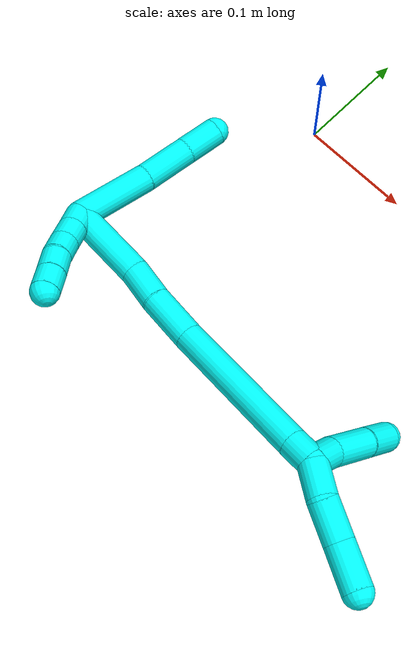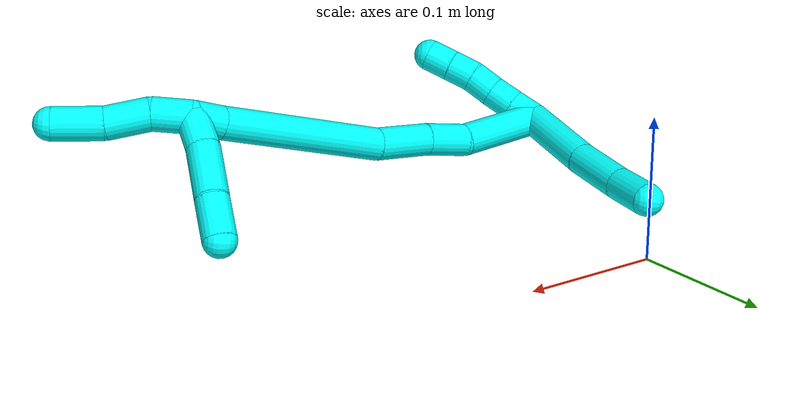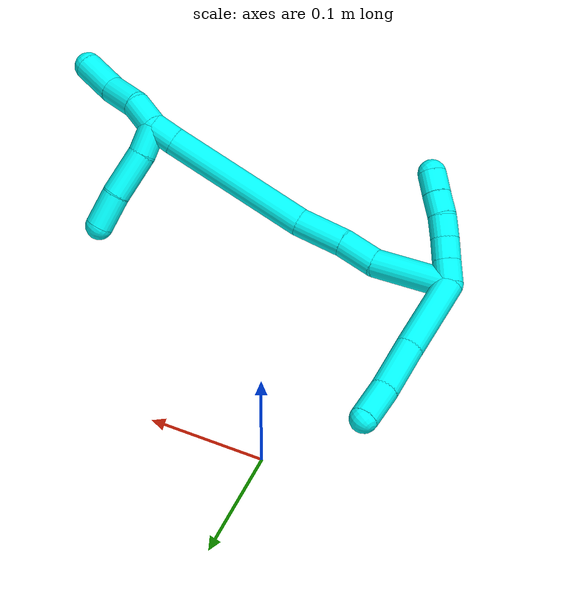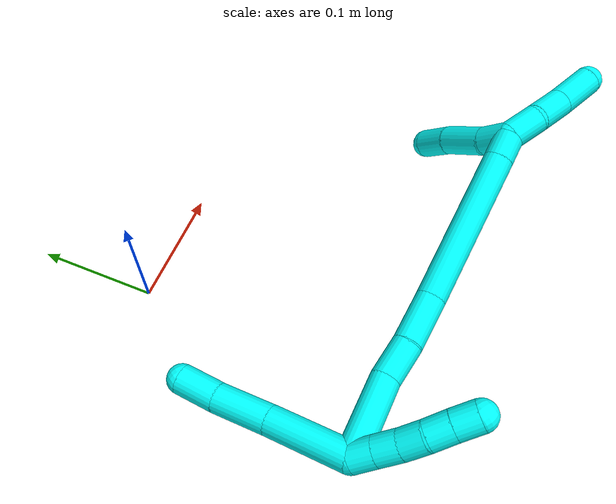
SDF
<sdf version="1.7">
 <world name="default">
  <model name="photoneo_s_sensor">
   <static>1</static>
   <pose>0 0 2 1.57079 1.57079 3.14159</pose>
   <link name="link">
    <inertial><mass>0.1</mass></inertial>
    <sensor name="sensor" type="depth">
     <update_rate>30</update_rate>
     <camera>
      <horizontal_fov>1.22</horizontal_fov>
      <image><width>1920</width><height>1200</height><format>B8G8R8</format></image>
      <clip><near>0.1</near><far>4</far></clip>
      <depth_camera><output>points</output></depth_camera>
     </camera>
     <plugin name="camera_plugin" filename="libgazebo_ros_depth_camera.so">
      <baseline>0.2</baseline>
      <alwaysOn>1</alwaysOn>
      <updateRate>0.0</updateRate>
      <cameraName>camera_ir</cameraName>
      <imageTopicName>/camera/color/image_raw</imageTopicName>
      <cameraInfoTopicName>/camera/color/camera_info</cameraInfoTopicName>
      <depthImageTopicName>/camera/depth/image_raw</depthImageTopicName>
      <depthImageCameraInfoTopicName>/camera/depth/camera_info</depthImageCameraInfoTopicName>
      <pointCloudTopicName>/camera/depth/points</pointCloudTopicName>
      <frameName>fr_optical</frameName>
      <pointCloudCutoff>0.1</pointCloudCutoff>
      <pointCloudCutoffMax>2.0</pointCloudCutoffMax>
      <distortionK1>0</distortionK1>
      <distortionK2>0</distortionK2>
      <distortionK3>0</distortionK3>
      <distortionT1>0</distortionT1>
      <distortionT2>0</distortionT2>
      <CxPrime>0</CxPrime>
      <Cx>0</Cx>
      <Cy>0</Cy>
      <focalLength>0</focalLength>
      <hackBaseline>0</hackBaseline>
     </plugin>
    </sensor>
   </link>
  </model>
  <model name="bin">
   <static>1</static>
   <link name="bottom">
    <collision name="collision-bottom">
     <pose>0 0 -0.01 0 -0 0</pose>
     <geometry><box><size>0.8 0.6 0.02</size></box></geometry>
     <surface>
      <friction><ode><mu>100</mu><mu2>100</mu2></ode></friction>
      <contact><collide_bitmask>65535</collide_bitmask></contact>
     </surface>
    </collision>
   </link>
   <link name="west_wall">
    <collision name="collision-west_wall">
     <pose>-0.41 0 0.1 0 -0 0</pose>
     <geometry><box><size>0.02 0.6 0.2</size></box></geometry>
     <surface>
      <friction><ode><mu>100</mu><mu2>100</mu2></ode></friction>
      <contact><collide_bitmask>65535</collide_bitmask></contact>
     </surface>
    </collision>
   </link>
   <link name="east_wall">
    <collision name="collision-east_wall">
     <pose>0.41 0 0.1 0 -0 0</pose>
     <geometry><box><size>0.02 0.6 0.2</size></box></geometry>
     <surface>
      <friction><ode><mu>100</mu><mu2>100</mu2></ode></friction>
      <contact><collide_bitmask>65535</collide_bitmask></contact>
     </surface>
    </collision>
   </link>
   <link name="south_wall">
    <collision name="collision-south_wall">
     <pose>0 -0.31 0.1 0 -0 0</pose>
     <geometry><box><size>0.8 0.02 0.2</size></box></geometry>
     <surface>
      <friction><ode><mu>100</mu><mu2>100</mu2></ode></friction>
      <contact><collide_bitmask>65535</collide_bitmask></contact>
     </surface>
    </collision>
   </link>
   <link name="north_wall">
    <collision name="collision-north_wall">
     <pose>0 0.31 0.1 0 -0 0</pose>
     <geometry><box><size>0.8 0.02 0.2</size></box></geometry>
     <surface>
      <friction><ode><mu>100</mu><mu2>100</mu2></ode></friction>
      <contact><collide_bitmask>65535</collide_bitmask></contact>
     </surface>
    </collision>
   </link>
  </model>
  <model name="3">
   <static>0</static>
   <link name="3">
    <collision name="collision-cylinder-e_1_2_8">
     <pose>-0.017615 0.025891 -0.015328 -2.10533 -0.529635 0.888033</pose>
     <geometry><cylinder><radius>0.0125</radius><length>0.069731</length></cylinder></geometry>
     <surface>
      <friction><ode><mu>1.16</mu><mu2>1.16</mu2><slip1>0</slip1><slip2>0</slip2></ode></friction>
      <contact><ode><kp>1e+06</kp><kd>1</kd><max_vel>0</max_vel><min_depth>0.001</min_depth></ode></contact>
     </surface>
    </collision>
    <visual name="visual-cylinder-e_1_2_8">
     <pose>-0.017615 0.025891 -0.015328 -2.10533 -0.529635 0.888033</pose>
     <geometry><cylinder><radius>0.0125</radius><length>0.069731</length></cylinder></geometry>
     <material><ambient>0.003922 1 0.996078 1</ambient></material>
    </visual>
    <collision name="collision-cylinder-e_2_8_9">
     <pose>-0.047927 0.067937 -0.041721 -2.17132 -0.575314 1.02287</pose>
     <geometry><cylinder><radius>0.0125</radius><length>0.046674</length></cylinder></geometry>
     <surface>
      <friction><ode><mu>1.16</mu><mu2>1.16</mu2><slip1>0</slip1><slip2>0</slip2></ode></friction>
      <contact><ode><kp>1e+06</kp><kd>1</kd><max_vel>0</max_vel><min_depth>0.001</min_depth></ode></contact>
     </surface>
    </collision>
    <visual name="visual-cylinder-e_2_8_9">
     <pose>-0.047927 0.067937 -0.041721 -2.17132 -0.575314 1.02287</pose>
     <geometry><cylinder><radius>0.0125</radius><length>0.046674</length></cylinder></geometry>
     <material><ambient>0.003922 1 0.996078 1</ambient></material>
    </visual>
    <collision name="collision-cylinder-e_3_9_6">
     <pose>-0.071037 0.095115 -0.060011 -2.15104 -0.668593 1.14287</pose>
     <geometry><cylinder><radius>0.0125</radius><length>0.033596</length></cylinder></geometry>
     <surface>
      <friction><ode><mu>1.16</mu><mu2>1.16</mu2><slip1>0</slip1><slip2>0</slip2></ode></friction>
      <contact><ode><kp>1e+06</kp><kd>1</kd><max_vel>0</max_vel><min_depth>0.001</min_depth></ode></contact>
     </surface>
    </collision>
    <visual name="visual-cylinder-e_3_9_6">
     <pose>-0.071037 0.095115 -0.060011 -2.15104 -0.668593 1.14287</pose>
     <geometry><cylinder><radius>0.0125</radius><length>0.033596</length></cylinder></geometry>
     <material><ambient>0.003922 1 0.996078 1</ambient></material>
    </visual>
    <collision name="collision-cylinder-e_1_2_10">
     <pose>0.000477 -0.005607 0.008266 0.596032 0.047707 0.014656</pose>
     <geometry><cylinder><radius>0.0125</radius><length>0.02</length></cylinder></geometry>
     <surface>
      <friction><ode><mu>1.16</mu><mu2>1.16</mu2><slip1>0</slip1><slip2>0</slip2></ode></friction>
      <contact><ode><kp>1e+06</kp><kd>1</kd><max_vel>0</max_vel><min_depth>0.001</min_depth></ode></contact>
     </surface>
    </collision>
    <visual name="visual-cylinder-e_1_2_10">
     <pose>0.000477 -0.005607 0.008266 0.596032 0.047707 0.014656</pose>
     <geometry><cylinder><radius>0.0125</radius><length>0.02</length></cylinder></geometry>
     <material><ambient>0.003922 1 0.996078 1</ambient></material>
    </visual>
    <collision name="collision-cylinder-e_2_10_11">
     <pose>0.001365 -0.016988 0.024687 0.616109 0.041092 0.013077</pose>
     <geometry><cylinder><radius>0.0125</radius><length>0.02</length></cylinder></geometry>
     <surface>
      <friction><ode><mu>1.16</mu><mu2>1.16</mu2><slip1>0</slip1><slip2>0</slip2></ode></friction>
      <contact><ode><kp>1e+06</kp><kd>1</kd><max_vel>0</max_vel><min_depth>0.001</min_depth></ode></contact>
     </surface>
    </collision>
    <visual name="visual-cylinder-e_2_10_11">
     <pose>0.001365 -0.016988 0.024687 0.616109 0.041092 0.013077</pose>
     <geometry><cylinder><radius>0.0125</radius><length>0.02</length></cylinder></geometry>
     <material><ambient>0.003922 1 0.996078 1</ambient></material>
    </visual>
    <collision name="collision-cylinder-e_3_11_12">
     <pose>0.001271 -0.028547 0.040983 0.617789 -0.050488 -0.016114</pose>
     <geometry><cylinder><radius>0.0125</radius><length>0.02</length></cylinder></geometry>
     <surface>
      <friction><ode><mu>1.16</mu><mu2>1.16</mu2><slip1>0</slip1><slip2>0</slip2></ode></friction>
      <contact><ode><kp>1e+06</kp><kd>1</kd><max_vel>0</max_vel><min_depth>0.001</min_depth></ode></contact>
     </surface>
    </collision>
    <visual name="visual-cylinder-e_3_11_12">
     <pose>0.001271 -0.028547 0.040983 0.617789 -0.050488 -0.016114</pose>
     <geometry><cylinder><radius>0.0125</radius><length>0.02</length></cylinder></geometry>
     <material><ambient>0.003922 1 0.996078 1</ambient></material>
    </visual>
    <collision name="collision-cylinder-e_4_12_13">
     <pose>0.000912 -0.038691 0.058123 0.451103 0.014552 0.003339</pose>
     <geometry><cylinder><radius>0.0125</radius><length>0.02</length></cylinder></geometry>
     <surface>
      <friction><ode><mu>1.16</mu><mu2>1.16</mu2><slip1>0</slip1><slip2>0</slip2></ode></friction>
      <contact><ode><kp>1e+06</kp><kd>1</kd><max_vel>0</max_vel><min_depth>0.001</min_depth></ode></contact>
     </surface>
    </collision>
    <visual name="visual-cylinder-e_4_12_13">
     <pose>0.000912 -0.038691 0.058123 0.451103 0.014552 0.003339</pose>
     <geometry><cylinder><radius>0.0125</radius><length>0.02</length></cylinder></geometry>
     <material><ambient>0.003922 1 0.996078 1</ambient></material>
    </visual>
    <collision name="collision-cylinder-e_5_13_5">
     <pose>0.001559 -0.047474 0.076075 0.458892 0.05026 0.011741</pose>
     <geometry><cylinder><radius>0.0125</radius><length>0.02</length></cylinder></geometry>
     <surface>
      <friction><ode><mu>1.16</mu><mu2>1.16</mu2><slip1>0</slip1><slip2>0</slip2></ode></friction>
      <contact><ode><kp>1e+06</kp><kd>1</kd><max_vel>0</max_vel><min_depth>0.001</min_depth></ode></contact>
     </surface>
    </collision>
    <visual name="visual-cylinder-e_5_13_5">
     <pose>0.001559 -0.047474 0.076075 0.458892 0.05026 0.011741</pose>
     <geometry><cylinder><radius>0.0125</radius><length>0.02</length></cylinder></geometry>
     <material><ambient>0.003922 1 0.996078 1</ambient></material>
    </visual>
    <collision name="collision-cylinder-e_1_2_14">
     <pose>-0.007579 0.016726 0.02905 -0.522416 -0.222361 0.059669</pose>
     <geometry><cylinder><radius>0.0125</radius><length>0.068734</length></cylinder></geometry>
     <surface>
      <friction><ode><mu>1.16</mu><mu2>1.16</mu2><slip1>0</slip1><slip2>0</slip2></ode></friction>
      <contact><ode><kp>1e+06</kp><kd>1</kd><max_vel>0</max_vel><min_depth>0.001</min_depth></ode></contact>
     </surface>
    </collision>
    <visual name="visual-cylinder-e_1_2_14">
     <pose>-0.007579 0.016726 0.02905 -0.522416 -0.222361 0.059669</pose>
     <geometry><cylinder><radius>0.0125</radius><length>0.068734</length></cylinder></geometry>
     <material><ambient>0.003922 1 0.996078 1</ambient></material>
    </visual>
    <collision name="collision-cylinder-e_2_14_15">
     <pose>-0.019615 0.037178 0.073666 -0.23492 -0.271596 0.032245</pose>
     <geometry><cylinder><radius>0.0125</radius><length>0.033229</length></cylinder></geometry>
     <surface>
      <friction><ode><mu>1.16</mu><mu2>1.16</mu2><slip1>0</slip1><slip2>0</slip2></ode></friction>
      <contact><ode><kp>1e+06</kp><kd>1</kd><max_vel>0</max_vel><min_depth>0.001</min_depth></ode></contact>
     </surface>
    </collision>
    <visual name="visual-cylinder-e_2_14_15">
     <pose>-0.019615 0.037178 0.073666 -0.23492 -0.271596 0.032245</pose>
     <geometry><cylinder><radius>0.0125</radius><length>0.033229</length></cylinder></geometry>
     <material><ambient>0.003922 1 0.996078 1</ambient></material>
    </visual>
    <collision name="collision-cylinder-e_3_15_16">
     <pose>-0.030243 0.048289 0.108807 -0.360773 -0.286796 0.052652</pose>
     <geometry><cylinder><radius>0.0125</radius><length>0.043627</length></cylinder></geometry>
     <surface>
      <friction><ode><mu>1.16</mu><mu2>1.16</mu2><slip1>0</slip1><slip2>0</slip2></ode></friction>
      <contact><ode><kp>1e+06</kp><kd>1</kd><max_vel>0</max_vel><min_depth>0.001</min_depth></ode></contact>
     </surface>
    </collision>
    <visual name="visual-cylinder-e_3_15_16">
     <pose>-0.030243 0.048289 0.108807 -0.360773 -0.286796 0.052652</pose>
     <geometry><cylinder><radius>0.0125</radius><length>0.043627</length></cylinder></geometry>
     <material><ambient>0.003922 1 0.996078 1</ambient></material>
    </visual>
    <collision name="collision-cylinder-e_4_16_17">
     <pose>-0.06393 0.067625 0.187037 -0.200991 -0.43088 0.044126</pose>
     <geometry><cylinder><radius>0.0125</radius><length>0.131761</length></cylinder></geometry>
     <surface>
      <friction><ode><mu>1.16</mu><mu2>1.16</mu2><slip1>0</slip1><slip2>0</slip2></ode></friction>
      <contact><ode><kp>1e+06</kp><kd>1</kd><max_vel>0</max_vel><min_depth>0.001</min_depth></ode></contact>
     </surface>
    </collision>
    <visual name="visual-cylinder-e_4_16_17">
     <pose>-0.06393 0.067625 0.187037 -0.200991 -0.43088 0.044126</pose>
     <geometry><cylinder><radius>0.0125</radius><length>0.131761</length></cylinder></geometry>
     <material><ambient>0.003922 1 0.996078 1</ambient></material>
    </visual>
    <collision name="collision-cylinder-e_5_17_1">
     <pose>-0.096604 0.081218 0.255638 -0.163692 -0.472837 0.039521</pose>
     <geometry><cylinder><radius>0.0125</radius><length>0.022649</length></cylinder></geometry>
     <surface>
      <friction><ode><mu>1.16</mu><mu2>1.16</mu2><slip1>0</slip1><slip2>0</slip2></ode></friction>
      <contact><ode><kp>1e+06</kp><kd>1</kd><max_vel>0</max_vel><min_depth>0.001</min_depth></ode></contact>
     </surface>
    </collision>
    <visual name="visual-cylinder-e_5_17_1">
     <pose>-0.096604 0.081218 0.255638 -0.163692 -0.472837 0.039521</pose>
     <geometry><cylinder><radius>0.0125</radius><length>0.022649</length></cylinder></geometry>
     <material><ambient>0.003922 1 0.996078 1</ambient></material>
    </visual>
    <collision name="collision-cylinder-e_1_1_18">
     <pose>-0.101751 0.094873 0.260696 -1.95729 0.00074 -0.001101</pose>
     <geometry><cylinder><radius>0.0125</radius><length>0.025938</length></cylinder></geometry>
     <surface>
      <friction><ode><mu>1.16</mu><mu2>1.16</mu2><slip1>0</slip1><slip2>0</slip2></ode></friction>
      <contact><ode><kp>1e+06</kp><kd>1</kd><max_vel>0</max_vel><min_depth>0.001</min_depth></ode></contact>
     </surface>
    </collision>
    <visual name="visual-cylinder-e_1_1_18">
     <pose>-0.101751 0.094873 0.260696 -1.95729 0.00074 -0.001101</pose>
     <geometry><cylinder><radius>0.0125</radius><length>0.025938</length></cylinder></geometry>
     <material><ambient>0.003922 1 0.996078 1</ambient></material>
    </visual>
    <collision name="collision-cylinder-e_2_18_19">
     <pose>-0.103911 0.127359 0.250923 -1.80498 -0.102716 0.130033</pose>
     <geometry><cylinder><radius>0.0125</radius><length>0.042319</length></cylinder></geometry>
     <surface>
      <friction><ode><mu>1.16</mu><mu2>1.16</mu2><slip1>0</slip1><slip2>0</slip2></ode></friction>
      <contact><ode><kp>1e+06</kp><kd>1</kd><max_vel>0</max_vel><min_depth>0.001</min_depth></ode></contact>
     </surface>
    </collision>
    <visual name="visual-cylinder-e_2_18_19">
     <pose>-0.103911 0.127359 0.250923 -1.80498 -0.102716 0.130033</pose>
     <geometry><cylinder><radius>0.0125</radius><length>0.042319</length></cylinder></geometry>
     <material><ambient>0.003922 1 0.996078 1</ambient></material>
    </visual>
    <collision name="collision-cylinder-e_3_19_4">
     <pose>-0.105822 0.163188 0.242033 -1.82604 0.016322 -0.021127</pose>
     <geometry><cylinder><radius>0.0125</radius><length>0.031743</length></cylinder></geometry>
     <surface>
      <friction><ode><mu>1.16</mu><mu2>1.16</mu2><slip1>0</slip1><slip2>0</slip2></ode></friction>
      <contact><ode><kp>1e+06</kp><kd>1</kd><max_vel>0</max_vel><min_depth>0.001</min_depth></ode></contact>
     </surface>
    </collision>
    <visual name="visual-cylinder-e_3_19_4">
     <pose>-0.105822 0.163188 0.242033 -1.82604 0.016322 -0.021127</pose>
     <geometry><cylinder><radius>0.0125</radius><length>0.031743</length></cylinder></geometry>
     <material><ambient>0.003922 1 0.996078 1</ambient></material>
    </visual>
    <collision name="collision-cylinder-e_1_1_20">
     <pose>-0.101441 0.082834 0.280208 0.001824 0.021854 2e-05</pose>
     <geometry><cylinder><radius>0.0125</radius><length>0.029254</length></cylinder></geometry>
     <surface>
      <friction><ode><mu>1.16</mu><mu2>1.16</mu2><slip1>0</slip1><slip2>0</slip2></ode></friction>
      <contact><ode><kp>1e+06</kp><kd>1</kd><max_vel>0</max_vel><min_depth>0.001</min_depth></ode></contact>
     </surface>
    </collision>
    <visual name="visual-cylinder-e_1_1_20">
     <pose>-0.101441 0.082834 0.280208 0.001824 0.021854 2e-05</pose>
     <geometry><cylinder><radius>0.0125</radius><length>0.029254</length></cylinder></geometry>
     <material><ambient>0.003922 1 0.996078 1</ambient></material>
    </visual>
    <collision name="collision-cylinder-e_2_20_21">
     <pose>-0.09931 0.087372 0.31074 -0.279392 0.109039 -0.015347</pose>
     <geometry><cylinder><radius>0.0125</radius><length>0.0333</length></cylinder></geometry>
     <surface>
      <friction><ode><mu>1.16</mu><mu2>1.16</mu2><slip1>0</slip1><slip2>0</slip2></ode></friction>
      <contact><ode><kp>1e+06</kp><kd>1</kd><max_vel>0</max_vel><min_depth>0.001</min_depth></ode></contact>
     </surface>
    </collision>
    <visual name="visual-cylinder-e_2_20_21">
     <pose>-0.09931 0.087372 0.31074 -0.279392 0.109039 -0.015347</pose>
     <geometry><cylinder><radius>0.0125</radius><length>0.0333</length></cylinder></geometry>
     <material><ambient>0.003922 1 0.996078 1</ambient></material>
    </visual>
    <collision name="collision-cylinder-e_3_21_3">
     <pose>-0.097692 0.094096 0.345247 -0.115606 -0.010378 0.000601</pose>
     <geometry><cylinder><radius>0.0125</radius><length>0.037447</length></cylinder></geometry>
     <surface>
      <friction><ode><mu>1.16</mu><mu2>1.16</mu2><slip1>0</slip1><slip2>0</slip2></ode></friction>
      <contact><ode><kp>1e+06</kp><kd>1</kd><max_vel>0</max_vel><min_depth>0.001</min_depth></ode></contact>
     </surface>
    </collision>
    <visual name="visual-cylinder-e_3_21_3">
     <pose>-0.097692 0.094096 0.345247 -0.115606 -0.010378 0.000601</pose>
     <geometry><cylinder><radius>0.0125</radius><length>0.037447</length></cylinder></geometry>
     <material><ambient>0.003922 1 0.996078 1</ambient></material>
    </visual>
    <collision name="collision-sphere-3">
     <pose>-0.097887 0.096255 0.363844 0 -0 0</pose>
     <geometry><sphere><radius>0.0125</radius></sphere></geometry>
     <surface>
      <friction><ode><mu>1.16</mu><mu2>1.16</mu2><slip1>0</slip1><slip2>0</slip2></ode></friction>
      <contact><ode><kp>1e+06</kp><kd>1</kd><max_vel>0</max_vel><min_depth>0.001</min_depth></ode></contact>
     </surface>
    </collision>
    <visual name="visual-sphere-3">
     <pose>-0.097887 0.096255 0.363844 0 -0 0</pose>
     <geometry><sphere><radius>0.0125</radius></sphere></geometry>
     <material><ambient>0.003922 1 0.996078 1</ambient></material>
    </visual>
    <collision name="collision-sphere-21">
     <pose>-0.097498 0.091936 0.32665 0 -0 0</pose>
     <geometry><sphere><radius>0.0125</radius></sphere></geometry>
     <surface>
      <friction><ode><mu>1.16</mu><mu2>1.16</mu2><slip1>0</slip1><slip2>0</slip2></ode></friction>
      <contact><ode><kp>1e+06</kp><kd>1</kd><max_vel>0</max_vel><min_depth>0.001</min_depth></ode></contact>
     </surface>
    </collision>
    <visual name="visual-sphere-21">
     <pose>-0.097498 0.091936 0.32665 0 -0 0</pose>
     <geometry><sphere><radius>0.0125</radius></sphere></geometry>
     <material><ambient>0.003922 1 0.996078 1</ambient></material>
    </visual>
    <collision name="collision-sphere-20">
     <pose>-0.101122 0.082808 0.294831 0 -0 0</pose>
     <geometry><sphere><radius>0.0125</radius></sphere></geometry>
     <surface>
      <friction><ode><mu>1.16</mu><mu2>1.16</mu2><slip1>0</slip1><slip2>0</slip2></ode></friction>
      <contact><ode><kp>1e+06</kp><kd>1</kd><max_vel>0</max_vel><min_depth>0.001</min_depth></ode></contact>
     </surface>
    </collision>
    <visual name="visual-sphere-20">
     <pose>-0.101122 0.082808 0.294831 0 -0 0</pose>
     <geometry><sphere><radius>0.0125</radius></sphere></geometry>
     <material><ambient>0.003922 1 0.996078 1</ambient></material>
    </visual>
    <collision name="collision-sphere-4">
     <pose>-0.105563 0.178543 0.238026 0 -0 0</pose>
     <geometry><sphere><radius>0.0125</radius></sphere></geometry>
     <surface>
      <friction><ode><mu>1.16</mu><mu2>1.16</mu2><slip1>0</slip1><slip2>0</slip2></ode></friction>
      <contact><ode><kp>1e+06</kp><kd>1</kd><max_vel>0</max_vel><min_depth>0.001</min_depth></ode></contact>
     </surface>
    </collision>
    <visual name="visual-sphere-4">
     <pose>-0.105563 0.178543 0.238026 0 -0 0</pose>
     <geometry><sphere><radius>0.0125</radius></sphere></geometry>
     <material><ambient>0.003922 1 0.996078 1</ambient></material>
    </visual>
    <collision name="collision-sphere-11">
     <pose>0.001775 -0.022762 0.032841 0 -0 0</pose>
     <geometry><sphere><radius>0.0125</radius></sphere></geometry>
     <surface>
      <friction><ode><mu>1.16</mu><mu2>1.16</mu2><slip1>0</slip1><slip2>0</slip2></ode></friction>
      <contact><ode><kp>1e+06</kp><kd>1</kd><max_vel>0</max_vel><min_depth>0.001</min_depth></ode></contact>
     </surface>
    </collision>
    <visual name="visual-sphere-11">
     <pose>0.001775 -0.022762 0.032841 0 -0 0</pose>
     <geometry><sphere><radius>0.0125</radius></sphere></geometry>
     <material><ambient>0.003922 1 0.996078 1</ambient></material>
    </visual>
    <collision name="collision-sphere-10">
     <pose>0.000954 -0.011214 0.016533 0 -0 0</pose>
     <geometry><sphere><radius>0.0125</radius></sphere></geometry>
     <surface>
      <friction><ode><mu>1.16</mu><mu2>1.16</mu2><slip1>0</slip1><slip2>0</slip2></ode></friction>
      <contact><ode><kp>1e+06</kp><kd>1</kd><max_vel>0</max_vel><min_depth>0.001</min_depth></ode></contact>
     </surface>
    </collision>
    <visual name="visual-sphere-10">
     <pose>0.000954 -0.011214 0.016533 0 -0 0</pose>
     <geometry><sphere><radius>0.0125</radius></sphere></geometry>
     <material><ambient>0.003922 1 0.996078 1</ambient></material>
    </visual>
    <collision name="collision-sphere-6">
     <pose>-0.08145 0.106139 -0.067238 0 -0 0</pose>
     <geometry><sphere><radius>0.0125</radius></sphere></geometry>
     <surface>
      <friction><ode><mu>1.16</mu><mu2>1.16</mu2><slip1>0</slip1><slip2>0</slip2></ode></friction>
      <contact><ode><kp>1e+06</kp><kd>1</kd><max_vel>0</max_vel><min_depth>0.001</min_depth></ode></contact>
     </surface>
    </collision>
    <visual name="visual-sphere-6">
     <pose>-0.08145 0.106139 -0.067238 0 -0 0</pose>
     <geometry><sphere><radius>0.0125</radius></sphere></geometry>
     <material><ambient>0.003922 1 0.996078 1</ambient></material>
    </visual>
    <collision name="collision-sphere-9">
     <pose>-0.060624 0.084091 -0.052785 0 -0 0</pose>
     <geometry><sphere><radius>0.0125</radius></sphere></geometry>
     <surface>
      <friction><ode><mu>1.16</mu><mu2>1.16</mu2><slip1>0</slip1><slip2>0</slip2></ode></friction>
      <contact><ode><kp>1e+06</kp><kd>1</kd><max_vel>0</max_vel><min_depth>0.001</min_depth></ode></contact>
     </surface>
    </collision>
    <visual name="visual-sphere-9">
     <pose>-0.060624 0.084091 -0.052785 0 -0 0</pose>
     <geometry><sphere><radius>0.0125</radius></sphere></geometry>
     <material><ambient>0.003922 1 0.996078 1</ambient></material>
    </visual>
    <collision name="collision-sphere-2">
     <geometry><sphere><radius>0.0125</radius></sphere></geometry>
     <surface>
      <friction><ode><mu>1.16</mu><mu2>1.16</mu2><slip1>0</slip1><slip2>0</slip2></ode></friction>
      <contact><ode><kp>1e+06</kp><kd>1</kd><max_vel>0</max_vel><min_depth>0.001</min_depth></ode></contact>
     </surface>
    </collision>
    <visual name="visual-sphere-2">
     <geometry><sphere><radius>0.0125</radius></sphere></geometry>
     <material><ambient>0.003922 1 0.996078 1</ambient></material>
    </visual>
    <collision name="collision-sphere-19">
     <pose>-0.106081 0.147832 0.246039 0 -0 0</pose>
     <geometry><sphere><radius>0.0125</radius></sphere></geometry>
     <surface>
      <friction><ode><mu>1.16</mu><mu2>1.16</mu2><slip1>0</slip1><slip2>0</slip2></ode></friction>
      <contact><ode><kp>1e+06</kp><kd>1</kd><max_vel>0</max_vel><min_depth>0.001</min_depth></ode></contact>
     </surface>
    </collision>
    <visual name="visual-sphere-19">
     <pose>-0.106081 0.147832 0.246039 0 -0 0</pose>
     <geometry><sphere><radius>0.0125</radius></sphere></geometry>
     <material><ambient>0.003922 1 0.996078 1</ambient></material>
    </visual>
    <collision name="collision-sphere-8">
     <pose>-0.035229 0.051783 -0.030656 0 -0 0</pose>
     <geometry><sphere><radius>0.0125</radius></sphere></geometry>
     <surface>
      <friction><ode><mu>1.16</mu><mu2>1.16</mu2><slip1>0</slip1><slip2>0</slip2></ode></friction>
      <contact><ode><kp>1e+06</kp><kd>1</kd><max_vel>0</max_vel><min_depth>0.001</min_depth></ode></contact>
     </surface>
    </collision>
    <visual name="visual-sphere-8">
     <pose>-0.035229 0.051783 -0.030656 0 -0 0</pose>
     <geometry><sphere><radius>0.0125</radius></sphere></geometry>
     <material><ambient>0.003922 1 0.996078 1</ambient></material>
    </visual>
    <collision name="collision-sphere-12">
     <pose>0.000766 -0.034332 0.049124 0 -0 0</pose>
     <geometry><sphere><radius>0.0125</radius></sphere></geometry>
     <surface>
      <friction><ode><mu>1.16</mu><mu2>1.16</mu2><slip1>0</slip1><slip2>0</slip2></ode></friction>
      <contact><ode><kp>1e+06</kp><kd>1</kd><max_vel>0</max_vel><min_depth>0.001</min_depth></ode></contact>
     </surface>
    </collision>
    <visual name="visual-sphere-12">
     <pose>0.000766 -0.034332 0.049124 0 -0 0</pose>
     <geometry><sphere><radius>0.0125</radius></sphere></geometry>
     <material><ambient>0.003922 1 0.996078 1</ambient></material>
    </visual>
    <collision name="collision-sphere-13">
     <pose>0.001057 -0.04305 0.067121 0 -0 0</pose>
     <geometry><sphere><radius>0.0125</radius></sphere></geometry>
     <surface>
      <friction><ode><mu>1.16</mu><mu2>1.16</mu2><slip1>0</slip1><slip2>0</slip2></ode></friction>
      <contact><ode><kp>1e+06</kp><kd>1</kd><max_vel>0</max_vel><min_depth>0.001</min_depth></ode></contact>
     </surface>
    </collision>
    <visual name="visual-sphere-13">
     <pose>0.001057 -0.04305 0.067121 0 -0 0</pose>
     <geometry><sphere><radius>0.0125</radius></sphere></geometry>
     <material><ambient>0.003922 1 0.996078 1</ambient></material>
    </visual>
    <collision name="collision-sphere-5">
     <pose>0.002062 -0.051898 0.08503 0 -0 0</pose>
     <geometry><sphere><radius>0.0125</radius></sphere></geometry>
     <surface>
      <friction><ode><mu>1.16</mu><mu2>1.16</mu2><slip1>0</slip1><slip2>0</slip2></ode></friction>
      <contact><ode><kp>1e+06</kp><kd>1</kd><max_vel>0</max_vel><min_depth>0.001</min_depth></ode></contact>
     </surface>
    </collision>
    <visual name="visual-sphere-5">
     <pose>0.002062 -0.051898 0.08503 0 -0 0</pose>
     <geometry><sphere><radius>0.0125</radius></sphere></geometry>
     <material><ambient>0.003922 1 0.996078 1</ambient></material>
    </visual>
    <collision name="collision-sphere-14">
     <pose>-0.015158 0.033452 0.0581 0 -0 0</pose>
     <geometry><sphere><radius>0.0125</radius></sphere></geometry>
     <surface>
      <friction><ode><mu>1.16</mu><mu2>1.16</mu2><slip1>0</slip1><slip2>0</slip2></ode></friction>
      <contact><ode><kp>1e+06</kp><kd>1</kd><max_vel>0</max_vel><min_depth>0.001</min_depth></ode></contact>
     </surface>
    </collision>
    <visual name="visual-sphere-14">
     <pose>-0.015158 0.033452 0.0581 0 -0 0</pose>
     <geometry><sphere><radius>0.0125</radius></sphere></geometry>
     <material><ambient>0.003922 1 0.996078 1</ambient></material>
    </visual>
    <collision name="collision-sphere-15">
     <pose>-0.024073 0.040903 0.089232 0 -0 0</pose>
     <geometry><sphere><radius>0.0125</radius></sphere></geometry>
     <surface>
      <friction><ode><mu>1.16</mu><mu2>1.16</mu2><slip1>0</slip1><slip2>0</slip2></ode></friction>
      <contact><ode><kp>1e+06</kp><kd>1</kd><max_vel>0</max_vel><min_depth>0.001</min_depth></ode></contact>
     </surface>
    </collision>
    <visual name="visual-sphere-15">
     <pose>-0.024073 0.040903 0.089232 0 -0 0</pose>
     <geometry><sphere><radius>0.0125</radius></sphere></geometry>
     <material><ambient>0.003922 1 0.996078 1</ambient></material>
    </visual>
    <collision name="collision-sphere-16">
     <pose>-0.036414 0.055674 0.128383 0 -0 0</pose>
     <geometry><sphere><radius>0.0125</radius></sphere></geometry>
     <surface>
      <friction><ode><mu>1.16</mu><mu2>1.16</mu2><slip1>0</slip1><slip2>0</slip2></ode></friction>
      <contact><ode><kp>1e+06</kp><kd>1</kd><max_vel>0</max_vel><min_depth>0.001</min_depth></ode></contact>
     </surface>
    </collision>
    <visual name="visual-sphere-16">
     <pose>-0.036414 0.055674 0.128383 0 -0 0</pose>
     <geometry><sphere><radius>0.0125</radius></sphere></geometry>
     <material><ambient>0.003922 1 0.996078 1</ambient></material>
    </visual>
    <collision name="collision-sphere-17">
     <pose>-0.091446 0.079575 0.24569 0 -0 0</pose>
     <geometry><sphere><radius>0.0125</radius></sphere></geometry>
     <surface>
      <friction><ode><mu>1.16</mu><mu2>1.16</mu2><slip1>0</slip1><slip2>0</slip2></ode></friction>
      <contact><ode><kp>1e+06</kp><kd>1</kd><max_vel>0</max_vel><min_depth>0.001</min_depth></ode></contact>
     </surface>
    </collision>
    <visual name="visual-sphere-17">
     <pose>-0.091446 0.079575 0.24569 0 -0 0</pose>
     <geometry><sphere><radius>0.0125</radius></sphere></geometry>
     <material><ambient>0.003922 1 0.996078 1</ambient></material>
    </visual>
    <collision name="collision-sphere-1">
     <pose>-0.101761 0.082861 0.265585 0 -0 0</pose>
     <geometry><sphere><radius>0.0125</radius></sphere></geometry>
     <surface>
      <friction><ode><mu>1.16</mu><mu2>1.16</mu2><slip1>0</slip1><slip2>0</slip2></ode></friction>
      <contact><ode><kp>1e+06</kp><kd>1</kd><max_vel>0</max_vel><min_depth>0.001</min_depth></ode></contact>
     </surface>
    </collision>
    <visual name="visual-sphere-1">
     <pose>-0.101761 0.082861 0.265585 0 -0 0</pose>
     <geometry><sphere><radius>0.0125</radius></sphere></geometry>
     <material><ambient>0.003922 1 0.996078 1</ambient></material>
    </visual>
    <collision name="collision-sphere-18">
     <pose>-0.101742 0.106886 0.255808 0 -0 0</pose>
     <geometry><sphere><radius>0.0125</radius></sphere></geometry>
     <surface>
      <friction><ode><mu>1.16</mu><mu2>1.16</mu2><slip1>0</slip1><slip2>0</slip2></ode></friction>
      <contact><ode><kp>1e+06</kp><kd>1</kd><max_vel>0</max_vel><min_depth>0.001</min_depth></ode></contact>
     </surface>
    </collision>
    <visual name="visual-sphere-18">
     <pose>-0.101742 0.106886 0.255808 0 -0 0</pose>
     <geometry><sphere><radius>0.0125</radius></sphere></geometry>
     <material><ambient>0.003922 1 0.996078 1</ambient></material>
    </visual>
    <inertial>
     <pose>-0.05223 0.056739 0.127057 0 -0 0</pose>
     <mass>0.75</mass>
     <inertia>
      <ixx>0.000307</ixx>
      <ixy>0</ixy>
      <ixz>0</ixz>
      <iyy>0.000312</iyy>
      <iyz>0</iyz>
      <izz>4.5e-05</izz>
     </inertia>
    </inertial>
   </link>
   <pose>-0.076357 -0.213297 0.034629 -1.41586 0.790629 -2.01308</pose>
  </model>
 </world>
</sdf>
